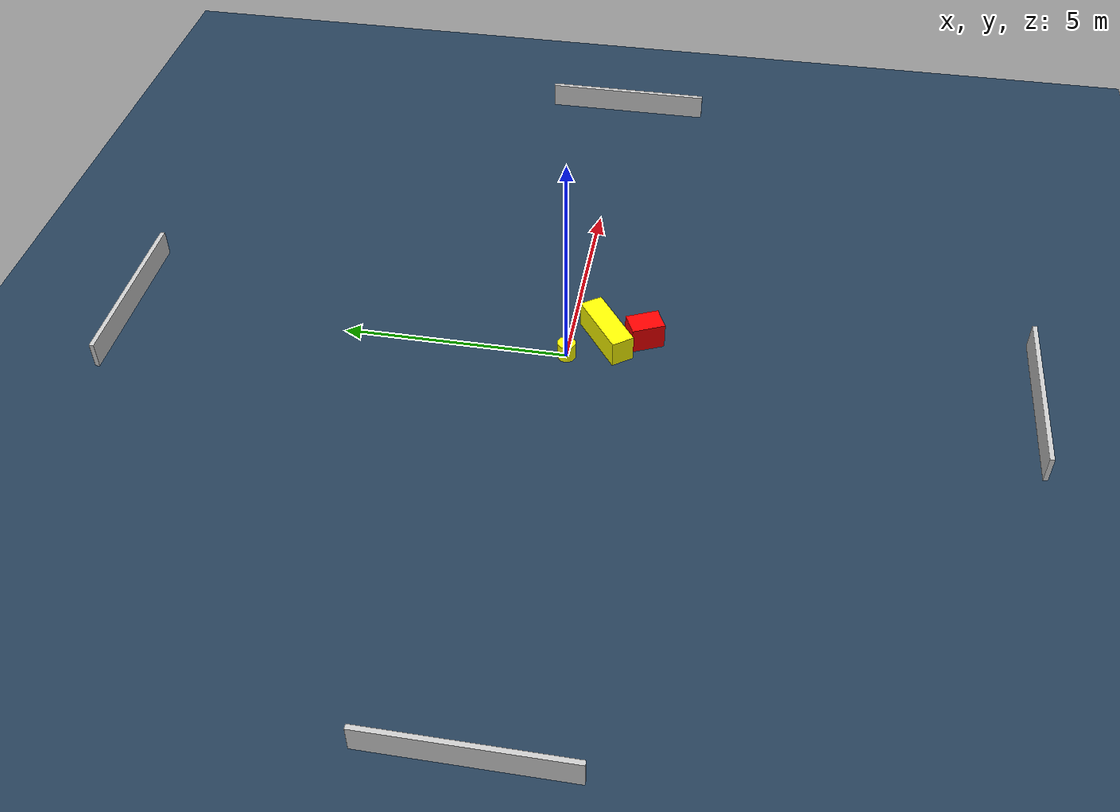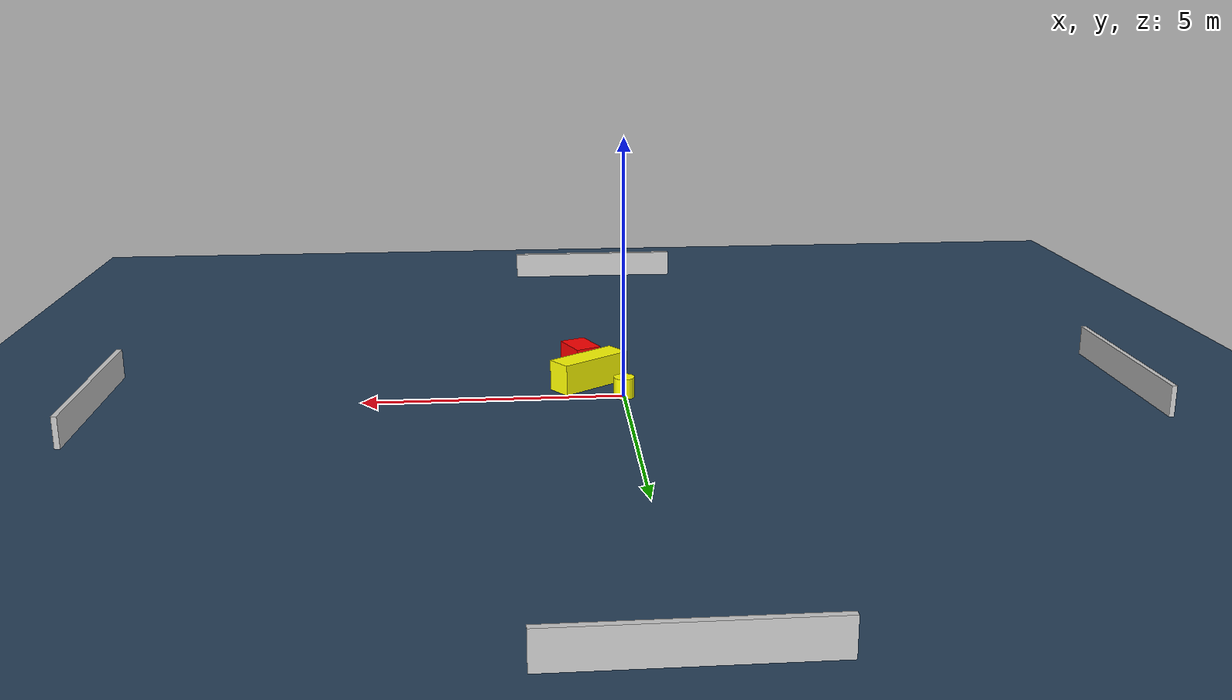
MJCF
<?xml version="1.0" ?>
<mujoco model="generated_environment">
  <option timestep="0.01" integrator="RK4" cone="elliptic"/>
  <default>
    <geom density="1"/>
  </default>
  <asset>
    <texture builtin="gradient" height="3072" name="skybox" rgb1="0.3 0.5 0.7" rgb2="0 0 0" type="skybox" width="512"/>
    <texture builtin="checker" height="300" name="groundplane" rgb1="0.2 0.3 0.4" rgb2="0.1 0.2 0.3" type="2d" width="300"/>
    <material name="groundplane" reflectance="0.2" texrepeat="5 5" texture="groundplane"/>
  </asset>
  <worldbody>
    <light dir="0 0 -1" directional="true" pos="0 0 1.5"/>
    <geom condim="3" friction="0.5 0.005 0.001" material="groundplane" name="floor" pos="0 0 0" size="0 0 0.05" type="plane"/>
    <body name="walls">
      <geom name="wall_1" condim="4" pos="-10.0 0.0 0.3" rgba="0.800000011920929 0.800000011920929 0.800000011920929 1.0" size="0.05 2.0 0.3" type="box"/>
      <geom name="wall_2" condim="4" pos="10.0 0.0 0.3" rgba="0.800000011920929 0.800000011920929 0.800000011920929 1.0" size="0.05 2.0 0.3" type="box"/>
      <geom name="wall_3" condim="4" pos="0.0 -10.0 0.3" rgba="0.800000011920929 0.800000011920929 0.800000011920929 1.0" size="2.0 0.05 0.3" type="box"/>
      <geom name="wall_4" condim="4" pos="0.0 10.0 0.3" rgba="0.800000011920929 0.800000011920929 0.800000011920929 1.0" size="2.0 0.05 0.3" type="box"/>
    </body>
    <body name="robot">
      <joint name="joint_x" type="slide" pos="0 0 0" axis="1 0 0"/>
      <joint name="joint_y" type="slide" pos="0 0 0" axis="0 1 0"/>
      <geom name="robot" type="cylinder" pos="0.0 0.0 0.2" size="0.2 0.2 0.0" mass="5.0" friction="1.0 0.005 0.0001" condim="4" rgba="1.0 1.0 0.0 1.0"/>
    </body>
    <body name="obstacle_1_movable">
      <geom name="obstacle_1_movable" condim="4" pos="0.635162249525627 -0.7842589067376903 0.3" euler="0 0 125.9431150555035" friction="0.0 0.005 0.001" rgba="1.0 1.0 0.0 1.0" size="0.2575347731798784 0.7601137580865509 0.3" type="box" mass="0.1"/>
      <joint type="free"/>
    </body>
    <body name="obstacle_2_static">
      <geom name="obstacle_2_static" condim="4" pos="0.7561391742633714 -1.6190190174181547 0.3" euler="0 0 294.61090173931495" friction="0.0 0.005 0.001" rgba="1.0 0.0 0.0 1.0" size="0.37215978355760937 0.2635571534440072 0.3" type="box"/>
    </body>
  </worldbody>
  <actuator>
    <motor name="actuator_x" joint="joint_x" gear="1" ctrlrange="-1 1"/>
    <motor name="actuator_y" joint="joint_y" gear="1" ctrlrange="-1 1"/>
  </actuator>
</mujoco>
